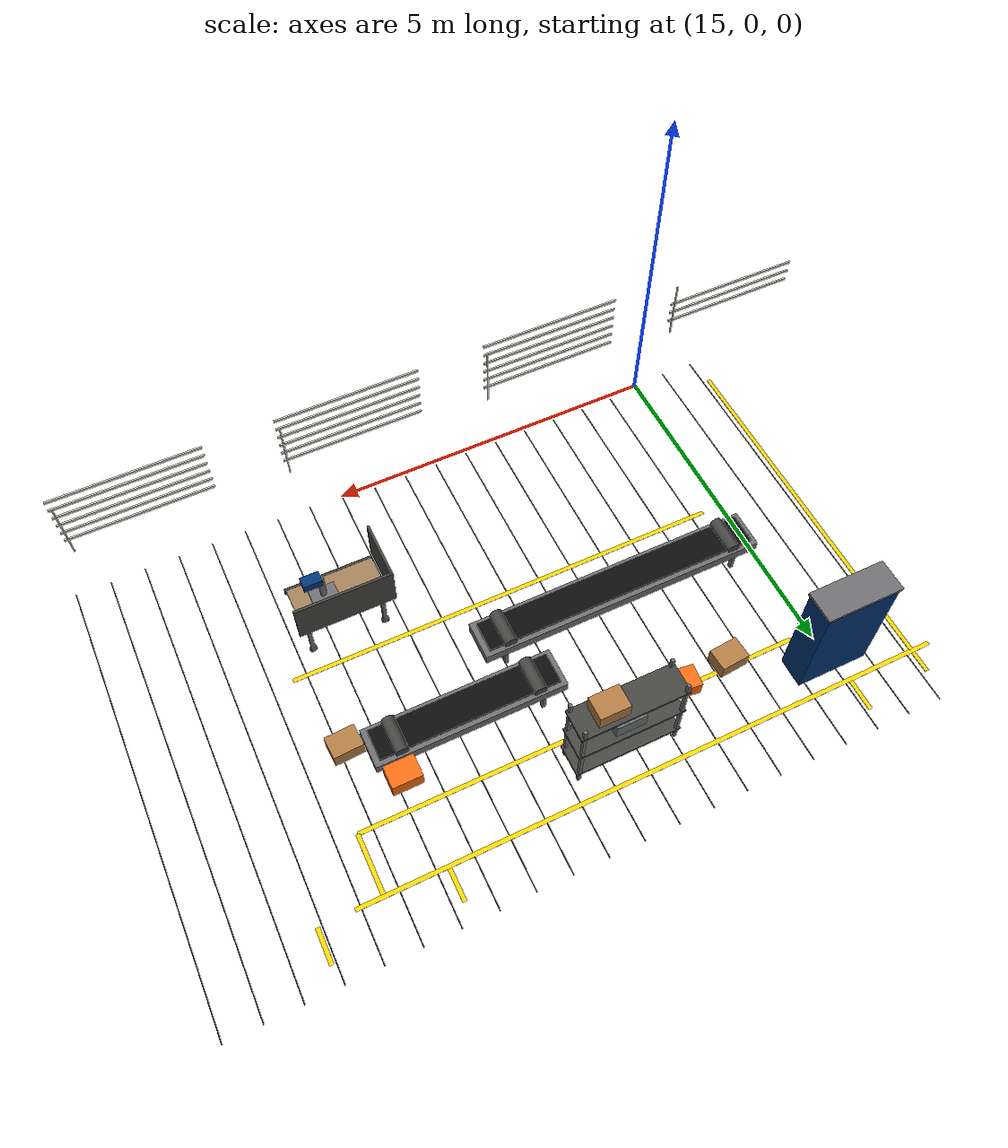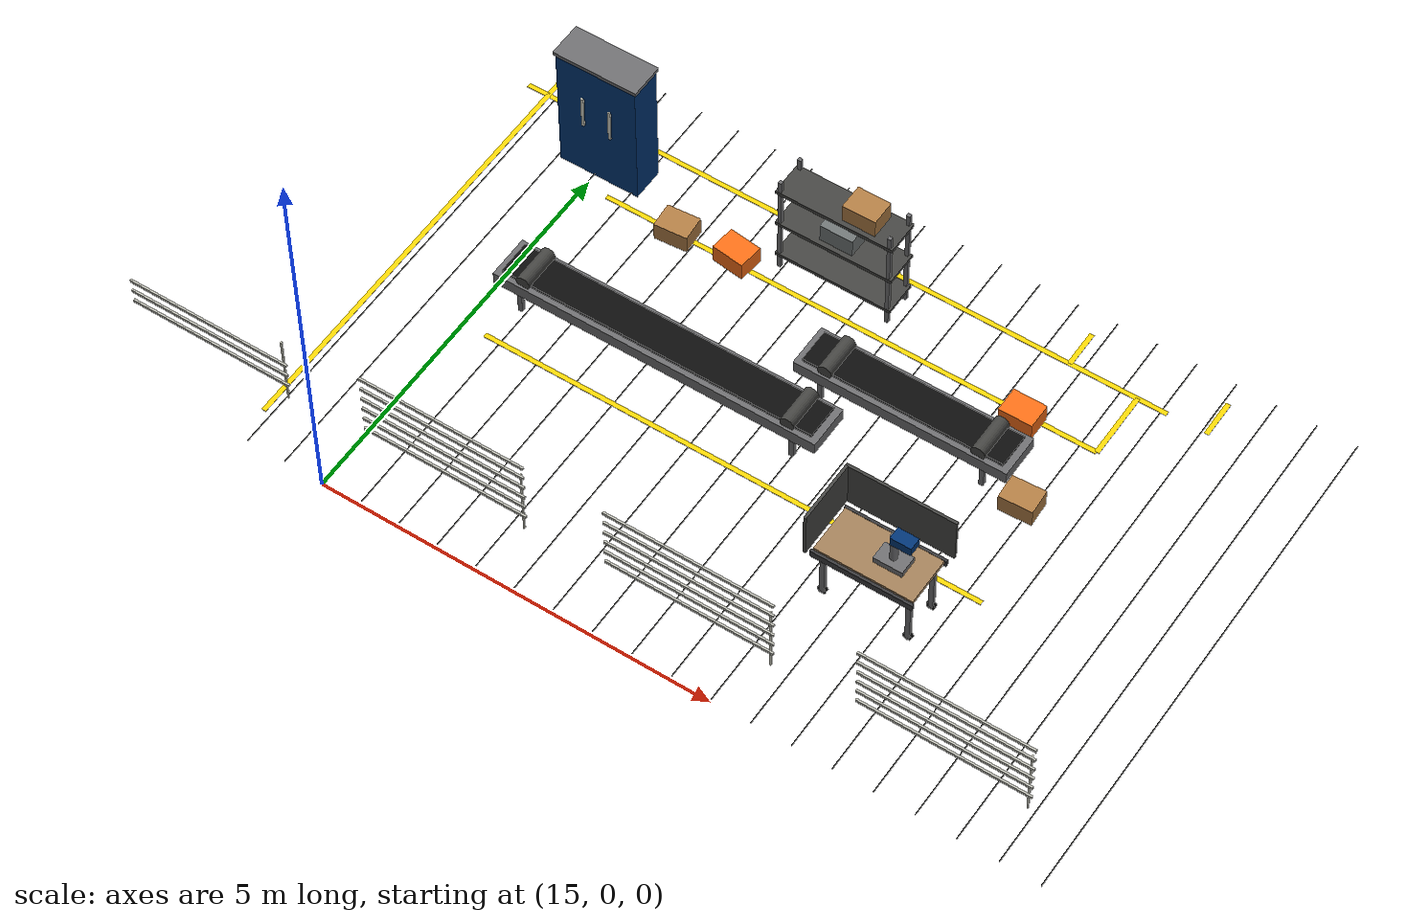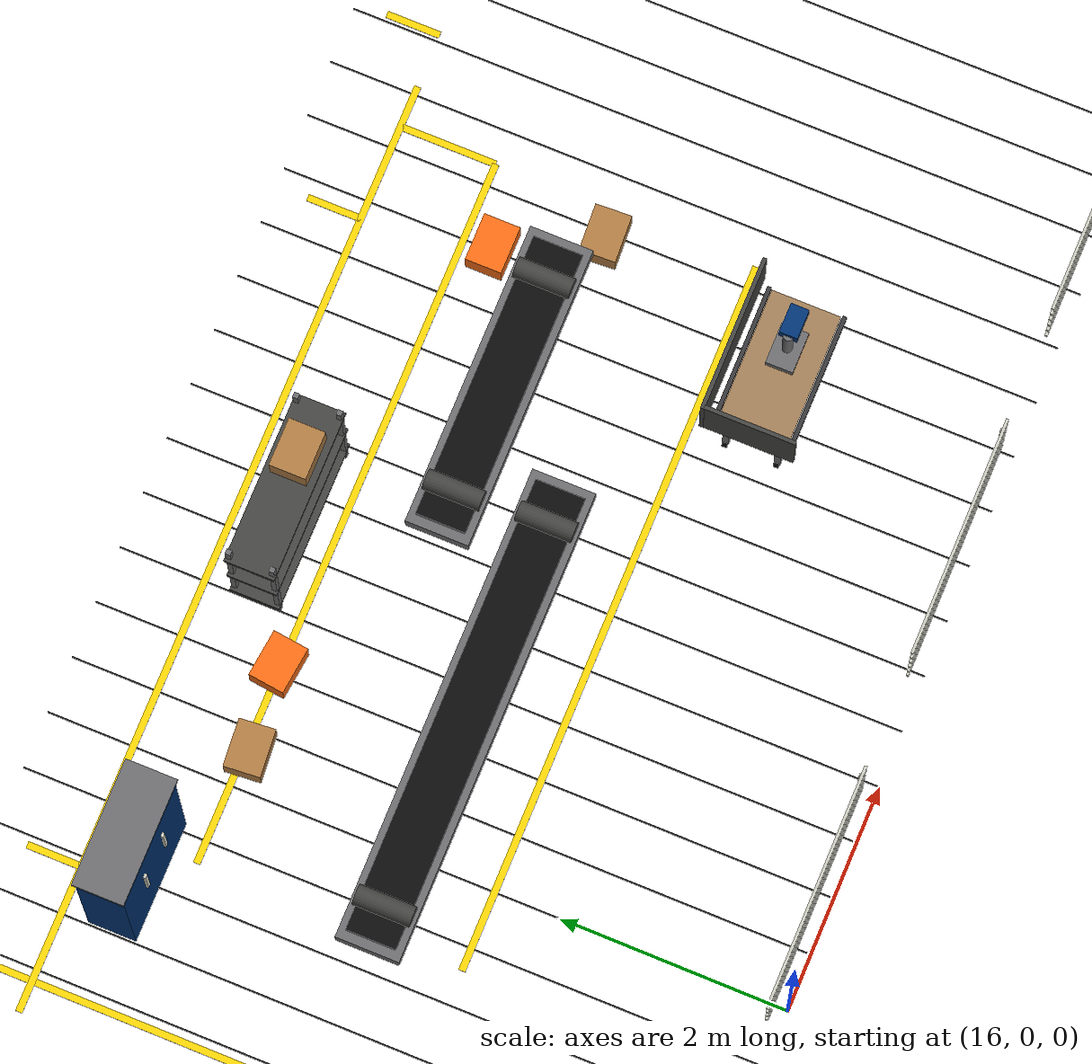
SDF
<sdf version="1.10">
 <model name="room_427_furnishings">
  <static>true</static>
  <link name="tile_seam_x_28">
   <pose>14 3.27 0.032 0 0 0</pose>
   <visual name="visual">
    <geometry><box><size>0.012 6.54 0.004</size></box></geometry>
    <material>
     <ambient>0.13 0.13 0.13 1</ambient>
     <diffuse>0.16 0.16 0.15 1</diffuse>
     <specular>0.04 0.04 0.04 1</specular>
    </material>
   </visual>
  </link>
  <link name="tile_seam_x_29">
   <pose>14.5 3.27 0.032 0 0 0</pose>
   <visual name="visual">
    <geometry><box><size>0.012 6.54 0.004</size></box></geometry>
    <material>
     <ambient>0.13 0.13 0.13 1</ambient>
     <diffuse>0.16 0.16 0.15 1</diffuse>
     <specular>0.04 0.04 0.04 1</specular>
    </material>
   </visual>
  </link>
  <link name="tile_seam_x_30">
   <pose>15 3.27 0.032 0 0 0</pose>
   <visual name="visual">
    <geometry><box><size>0.012 6.54 0.004</size></box></geometry>
    <material>
     <ambient>0.13 0.13 0.13 1</ambient>
     <diffuse>0.16 0.16 0.15 1</diffuse>
     <specular>0.04 0.04 0.04 1</specular>
    </material>
   </visual>
  </link>
  <link name="tile_seam_x_31">
   <pose>15.5 3.27 0.032 0 0 0</pose>
   <visual name="visual">
    <geometry><box><size>0.012 6.54 0.004</size></box></geometry>
    <material>
     <ambient>0.13 0.13 0.13 1</ambient>
     <diffuse>0.16 0.16 0.15 1</diffuse>
     <specular>0.04 0.04 0.04 1</specular>
    </material>
   </visual>
  </link>
  <link name="tile_seam_x_32">
   <pose>16 3.27 0.032 0 0 0</pose>
   <visual name="visual">
    <geometry><box><size>0.012 6.54 0.004</size></box></geometry>
    <material>
     <ambient>0.13 0.13 0.13 1</ambient>
     <diffuse>0.16 0.16 0.15 1</diffuse>
     <specular>0.04 0.04 0.04 1</specular>
    </material>
   </visual>
  </link>
  <link name="tile_seam_x_33">
   <pose>16.5 3.27 0.032 0 0 0</pose>
   <visual name="visual">
    <geometry><box><size>0.012 6.54 0.004</size></box></geometry>
    <material>
     <ambient>0.13 0.13 0.13 1</ambient>
     <diffuse>0.16 0.16 0.15 1</diffuse>
     <specular>0.04 0.04 0.04 1</specular>
    </material>
   </visual>
  </link>
  <link name="tile_seam_x_34">
   <pose>17 3.27 0.032 0 0 0</pose>
   <visual name="visual">
    <geometry><box><size>0.012 6.54 0.004</size></box></geometry>
    <material>
     <ambient>0.13 0.13 0.13 1</ambient>
     <diffuse>0.16 0.16 0.15 1</diffuse>
     <specular>0.04 0.04 0.04 1</specular>
    </material>
   </visual>
  </link>
  <link name="tile_seam_x_35">
   <pose>17.5 3.27 0.032 0 0 0</pose>
   <visual name="visual">
    <geometry><box><size>0.012 6.54 0.004</size></box></geometry>
    <material>
     <ambient>0.13 0.13 0.13 1</ambient>
     <diffuse>0.16 0.16 0.15 1</diffuse>
     <specular>0.04 0.04 0.04 1</specular>
    </material>
   </visual>
  </link>
  <link name="tile_seam_x_36">
   <pose>18 3.27 0.032 0 0 0</pose>
   <visual name="visual">
    <geometry><box><size>0.012 6.54 0.004</size></box></geometry>
    <material>
     <ambient>0.13 0.13 0.13 1</ambient>
     <diffuse>0.16 0.16 0.15 1</diffuse>
     <specular>0.04 0.04 0.04 1</specular>
    </material>
   </visual>
  </link>
  <link name="tile_seam_x_37">
   <pose>18.5 3.27 0.032 0 0 0</pose>
   <visual name="visual">
    <geometry><box><size>0.012 6.54 0.004</size></box></geometry>
    <material>
     <ambient>0.13 0.13 0.13 1</ambient>
     <diffuse>0.16 0.16 0.15 1</diffuse>
     <specular>0.04 0.04 0.04 1</specular>
    </material>
   </visual>
  </link>
  <link name="tile_seam_x_38">
   <pose>19 3.27 0.032 0 0 0</pose>
   <visual name="visual">
    <geometry><box><size>0.012 6.54 0.004</size></box></geometry>
    <material>
     <ambient>0.13 0.13 0.13 1</ambient>
     <diffuse>0.16 0.16 0.15 1</diffuse>
     <specular>0.04 0.04 0.04 1</specular>
    </material>
   </visual>
  </link>
  <link name="tile_seam_x_39">
   <pose>19.5 3.27 0.032 0 0 0</pose>
   <visual name="visual">
    <geometry><box><size>0.012 6.54 0.004</size></box></geometry>
    <material>
     <ambient>0.13 0.13 0.13 1</ambient>
     <diffuse>0.16 0.16 0.15 1</diffuse>
     <specular>0.04 0.04 0.04 1</specular>
    </material>
   </visual>
  </link>
  <link name="tile_seam_x_40">
   <pose>20 3.27 0.032 0 0 0</pose>
   <visual name="visual">
    <geometry><box><size>0.012 6.54 0.004</size></box></geometry>
    <material>
     <ambient>0.13 0.13 0.13 1</ambient>
     <diffuse>0.16 0.16 0.15 1</diffuse>
     <specular>0.04 0.04 0.04 1</specular>
    </material>
   </visual>
  </link>
  <link name="tile_seam_x_41">
   <pose>20.5 3.27 0.032 0 0 0</pose>
   <visual name="visual">
    <geometry><box><size>0.012 6.54 0.004</size></box></geometry>
    <material>
     <ambient>0.13 0.13 0.13 1</ambient>
     <diffuse>0.16 0.16 0.15 1</diffuse>
     <specular>0.04 0.04 0.04 1</specular>
    </material>
   </visual>
  </link>
  <link name="tile_seam_x_42">
   <pose>21 3.27 0.032 0 0 0</pose>
   <visual name="visual">
    <geometry><box><size>0.012 6.54 0.004</size></box></geometry>
    <material>
     <ambient>0.13 0.13 0.13 1</ambient>
     <diffuse>0.16 0.16 0.15 1</diffuse>
     <specular>0.04 0.04 0.04 1</specular>
    </material>
   </visual>
  </link>
  <link name="tile_seam_x_43">
   <pose>21.5 3.27 0.032 0 0 0</pose>
   <visual name="visual">
    <geometry><box><size>0.012 6.54 0.004</size></box></geometry>
    <material>
     <ambient>0.13 0.13 0.13 1</ambient>
     <diffuse>0.16 0.16 0.15 1</diffuse>
     <specular>0.04 0.04 0.04 1</specular>
    </material>
   </visual>
  </link>
  <link name="tile_seam_x_44">
   <pose>22 3.27 0.032 0 0 0</pose>
   <visual name="visual">
    <geometry><box><size>0.012 6.54 0.004</size></box></geometry>
    <material>
     <ambient>0.13 0.13 0.13 1</ambient>
     <diffuse>0.16 0.16 0.15 1</diffuse>
     <specular>0.04 0.04 0.04 1</specular>
    </material>
   </visual>
  </link>
  <link name="tile_seam_x_45">
   <pose>22.5 3.27 0.032 0 0 0</pose>
   <visual name="visual">
    <geometry><box><size>0.012 6.54 0.004</size></box></geometry>
    <material>
     <ambient>0.13 0.13 0.13 1</ambient>
     <diffuse>0.16 0.16 0.15 1</diffuse>
     <specular>0.04 0.04 0.04 1</specular>
    </material>
   </visual>
  </link>
  <link name="tile_seam_x_46">
   <pose>23 3.27 0.032 0 0 0</pose>
   <visual name="visual">
    <geometry><box><size>0.012 6.54 0.004</size></box></geometry>
    <material>
     <ambient>0.13 0.13 0.13 1</ambient>
     <diffuse>0.16 0.16 0.15 1</diffuse>
     <specular>0.04 0.04 0.04 1</specular>
    </material>
   </visual>
  </link>
  <link name="tile_seam_x_47">
   <pose>23.5 3.27 0.032 0 0 0</pose>
   <visual name="visual">
    <geometry><box><size>0.012 6.54 0.004</size></box></geometry>
    <material>
     <ambient>0.13 0.13 0.13 1</ambient>
     <diffuse>0.16 0.16 0.15 1</diffuse>
     <specular>0.04 0.04 0.04 1</specular>
    </material>
   </visual>
  </link>
  <link name="tile_seam_x_48">
   <pose>24 3.27 0.032 0 0 0</pose>
   <visual name="visual">
    <geometry><box><size>0.012 6.54 0.004</size></box></geometry>
    <material>
     <ambient>0.13 0.13 0.13 1</ambient>
     <diffuse>0.16 0.16 0.15 1</diffuse>
     <specular>0.04 0.04 0.04 1</specular>
    </material>
   </visual>
  </link>
  <link name="yellow_tape_class_conveyor_divider">
   <pose>13.9 3.27 0.036 0 0 1.5708</pose>
   <visual name="visual">
    <geometry><box><size>5.7 0.06 0.006</size></box></geometry>
    <material>
     <ambient>1.0 0.82 0.02 1</ambient>
     <diffuse>1.0 0.82 0.02 1</diffuse>
     <specular>0.25 0.22 0.04 1</specular>
    </material>
   </visual>
  </link>
  <link name="yellow_tape_back_door_run">
   <pose>17.85 5.78 0.036 0 0 0</pose>
   <visual name="visual">
    <geometry><box><size>8.45 0.06 0.006</size></box></geometry>
    <material>
     <ambient>1.0 0.82 0.02 1</ambient>
     <diffuse>1.0 0.82 0.02 1</diffuse>
     <specular>0.25 0.22 0.04 1</specular>
    </material>
   </visual>
  </link>
  <link name="yellow_tape_back_door_2_right_side">
   <pose>14.92 6.02 0.036 0 0 1.5708</pose>
   <visual name="visual">
    <geometry><box><size>0.48 0.06 0.006</size></box></geometry>
    <material>
     <ambient>1.0 0.82 0.02 1</ambient>
     <diffuse>1.0 0.82 0.02 1</diffuse>
     <specular>0.25 0.22 0.04 1</specular>
    </material>
   </visual>
  </link>
  <link name="yellow_tape_back_door_1_left_side">
   <pose>20.84 6.02 0.036 0 0 1.5708</pose>
   <visual name="visual">
    <geometry><box><size>0.48 0.06 0.006</size></box></geometry>
    <material>
     <ambient>1.0 0.82 0.02 1</ambient>
     <diffuse>1.0 0.82 0.02 1</diffuse>
     <specular>0.25 0.22 0.04 1</specular>
    </material>
   </visual>
  </link>
  <link name="yellow_tape_back_door_1_right_side">
   <pose>22.56 6.02 0.036 0 0 1.5708</pose>
   <visual name="visual">
    <geometry><box><size>0.48 0.06 0.006</size></box></geometry>
    <material>
     <ambient>1.0 0.82 0.02 1</ambient>
     <diffuse>1.0 0.82 0.02 1</diffuse>
     <specular>0.25 0.22 0.04 1</specular>
    </material>
   </visual>
  </link>
  <link name="yellow_tape_conveyor_front_boundary">
   <pose>18.5 2.58 0.036 0 0 0</pose>
   <visual name="visual">
    <geometry><box><size>6.4 0.06 0.006</size></box></geometry>
    <material>
     <ambient>1.0 0.82 0.02 1</ambient>
     <diffuse>1.0 0.82 0.02 1</diffuse>
     <specular>0.25 0.22 0.04 1</specular>
    </material>
   </visual>
  </link>
  <link name="yellow_tape_conveyor_back_boundary">
   <pose>18.5 4.92 0.036 0 0 0</pose>
   <visual name="visual">
    <geometry><box><size>6.4 0.06 0.006</size></box></geometry>
    <material>
     <ambient>1.0 0.82 0.02 1</ambient>
     <diffuse>1.0 0.82 0.02 1</diffuse>
     <specular>0.25 0.22 0.04 1</specular>
    </material>
   </visual>
  </link>
  <link name="yellow_tape_conveyor_exit_to_back_door">
   <pose>21.7 5.35 0.036 0 0 1.5708</pose>
   <visual name="visual">
    <geometry><box><size>0.86 0.06 0.006</size></box></geometry>
    <material>
     <ambient>1.0 0.82 0.02 1</ambient>
     <diffuse>1.0 0.82 0.02 1</diffuse>
     <specular>0.25 0.22 0.04 1</specular>
    </material>
   </visual>
  </link>
  <link name="blind_5_4">
   <pose>13.61 0.085 1.74 0 0 0</pose>
   <visual name="visual">
    <geometry><box><size>2.06 0.024 0.035</size></box></geometry>
    <material>
     <ambient>0.72 0.72 0.68 1</ambient>
     <diffuse>0.78 0.78 0.74 1</diffuse>
     <specular>0.12 0.12 0.12 1</specular>
    </material>
   </visual>
  </link>
  <link name="blind_5_5">
   <pose>13.61 0.085 1.57 0 0 0</pose>
   <visual name="visual">
    <geometry><box><size>2.06 0.024 0.035</size></box></geometry>
    <material>
     <ambient>0.72 0.72 0.68 1</ambient>
     <diffuse>0.78 0.78 0.74 1</diffuse>
     <specular>0.12 0.12 0.12 1</specular>
    </material>
   </visual>
  </link>
  <link name="blind_5_6">
   <pose>13.61 0.085 1.4 0 0 0</pose>
   <visual name="visual">
    <geometry><box><size>2.06 0.024 0.035</size></box></geometry>
    <material>
     <ambient>0.72 0.72 0.68 1</ambient>
     <diffuse>0.78 0.78 0.74 1</diffuse>
     <specular>0.12 0.12 0.12 1</specular>
    </material>
   </visual>
  </link>
  <link name="blind_5_pull">
   <pose>14.59 0.105 1.62 0 0 0</pose>
   <visual name="visual">
    <geometry><box><size>0.018 0.018 0.96</size></box></geometry>
    <material>
     <ambient>0.78 0.78 0.72 1</ambient>
     <diffuse>0.86 0.86 0.80 1</diffuse>
     <specular>0.45 0.45 0.40 1</specular>
    </material>
   </visual>
  </link>
  <link name="blind_6_1">
   <pose>16.65 0.085 2.25 0 0 0</pose>
   <visual name="visual">
    <geometry><box><size>2.06 0.024 0.035</size></box></geometry>
    <material>
     <ambient>0.72 0.72 0.68 1</ambient>
     <diffuse>0.78 0.78 0.74 1</diffuse>
     <specular>0.12 0.12 0.12 1</specular>
    </material>
   </visual>
  </link>
  <link name="blind_6_2">
   <pose>16.65 0.085 2.08 0 0 0</pose>
   <visual name="visual">
    <geometry><box><size>2.06 0.024 0.035</size></box></geometry>
    <material>
     <ambient>0.72 0.72 0.68 1</ambient>
     <diffuse>0.78 0.78 0.74 1</diffuse>
     <specular>0.12 0.12 0.12 1</specular>
    </material>
   </visual>
  </link>
  <link name="blind_6_3">
   <pose>16.65 0.085 1.91 0 0 0</pose>
   <visual name="visual">
    <geometry><box><size>2.06 0.024 0.035</size></box></geometry>
    <material>
     <ambient>0.72 0.72 0.68 1</ambient>
     <diffuse>0.78 0.78 0.74 1</diffuse>
     <specular>0.12 0.12 0.12 1</specular>
    </material>
   </visual>
  </link>
  <link name="blind_6_4">
   <pose>16.65 0.085 1.74 0 0 0</pose>
   <visual name="visual">
    <geometry><box><size>2.06 0.024 0.035</size></box></geometry>
    <material>
     <ambient>0.72 0.72 0.68 1</ambient>
     <diffuse>0.78 0.78 0.74 1</diffuse>
     <specular>0.12 0.12 0.12 1</specular>
    </material>
   </visual>
  </link>
  <link name="blind_6_5">
   <pose>16.65 0.085 1.57 0 0 0</pose>
   <visual name="visual">
    <geometry><box><size>2.06 0.024 0.035</size></box></geometry>
    <material>
     <ambient>0.72 0.72 0.68 1</ambient>
     <diffuse>0.78 0.78 0.74 1</diffuse>
     <specular>0.12 0.12 0.12 1</specular>
    </material>
   </visual>
  </link>
  <link name="blind_6_6">
   <pose>16.65 0.085 1.4 0 0 0</pose>
   <visual name="visual">
    <geometry><box><size>2.06 0.024 0.035</size></box></geometry>
    <material>
     <ambient>0.72 0.72 0.68 1</ambient>
     <diffuse>0.78 0.78 0.74 1</diffuse>
     <specular>0.12 0.12 0.12 1</specular>
    </material>
   </visual>
  </link>
  <link name="blind_6_pull">
   <pose>17.63 0.105 1.62 0 0 0</pose>
   <visual name="visual">
    <geometry><box><size>0.018 0.018 0.96</size></box></geometry>
    <material>
     <ambient>0.78 0.78 0.72 1</ambient>
     <diffuse>0.86 0.86 0.80 1</diffuse>
     <specular>0.45 0.45 0.40 1</specular>
    </material>
   </visual>
  </link>
  <link name="blind_7_1">
   <pose>19.69 0.085 2.25 0 0 0</pose>
   <visual name="visual">
    <geometry><box><size>2.06 0.024 0.035</size></box></geometry>
    <material>
     <ambient>0.72 0.72 0.68 1</ambient>
     <diffuse>0.78 0.78 0.74 1</diffuse>
     <specular>0.12 0.12 0.12 1</specular>
    </material>
   </visual>
  </link>
  <link name="blind_7_2">
   <pose>19.69 0.085 2.08 0 0 0</pose>
   <visual name="visual">
    <geometry><box><size>2.06 0.024 0.035</size></box></geometry>
    <material>
     <ambient>0.72 0.72 0.68 1</ambient>
     <diffuse>0.78 0.78 0.74 1</diffuse>
     <specular>0.12 0.12 0.12 1</specular>
    </material>
   </visual>
  </link>
  <link name="blind_7_3">
   <pose>19.69 0.085 1.91 0 0 0</pose>
   <visual name="visual">
    <geometry><box><size>2.06 0.024 0.035</size></box></geometry>
    <material>
     <ambient>0.72 0.72 0.68 1</ambient>
     <diffuse>0.78 0.78 0.74 1</diffuse>
     <specular>0.12 0.12 0.12 1</specular>
    </material>
   </visual>
  </link>
  <link name="blind_7_4">
   <pose>19.69 0.085 1.74 0 0 0</pose>
   <visual name="visual">
    <geometry><box><size>2.06 0.024 0.035</size></box></geometry>
    <material>
     <ambient>0.72 0.72 0.68 1</ambient>
     <diffuse>0.78 0.78 0.74 1</diffuse>
     <specular>0.12 0.12 0.12 1</specular>
    </material>
   </visual>
  </link>
  <link name="blind_7_5">
   <pose>19.69 0.085 1.57 0 0 0</pose>
   <visual name="visual">
    <geometry><box><size>2.06 0.024 0.035</size></box></geometry>
    <material>
     <ambient>0.72 0.72 0.68 1</ambient>
     <diffuse>0.78 0.78 0.74 1</diffuse>
     <specular>0.12 0.12 0.12 1</specular>
    </material>
   </visual>
  </link>
  <link name="blind_7_6">
   <pose>19.69 0.085 1.4 0 0 0</pose>
   <visual name="visual">
    <geometry><box><size>2.06 0.024 0.035</size></box></geometry>
    <material>
     <ambient>0.72 0.72 0.68 1</ambient>
     <diffuse>0.78 0.78 0.74 1</diffuse>
     <specular>0.12 0.12 0.12 1</specular>
    </material>
   </visual>
  </link>
  <link name="blind_7_pull">
   <pose>20.67 0.105 1.62 0 0 0</pose>
   <visual name="visual">
    <geometry><box><size>0.018 0.018 0.96</size></box></geometry>
    <material>
     <ambient>0.78 0.78 0.72 1</ambient>
     <diffuse>0.86 0.86 0.80 1</diffuse>
     <specular>0.45 0.45 0.40 1</specular>
    </material>
   </visual>
  </link>
  <link name="blind_8_1">
   <pose>22.73 0.085 2.25 0 0 0</pose>
   <visual name="visual">
    <geometry><box><size>2.06 0.024 0.035</size></box></geometry>
    <material>
     <ambient>0.72 0.72 0.68 1</ambient>
     <diffuse>0.78 0.78 0.74 1</diffuse>
     <specular>0.12 0.12 0.12 1</specular>
    </material>
   </visual>
  </link>
  <link name="blind_8_2">
   <pose>22.73 0.085 2.08 0 0 0</pose>
   <visual name="visual">
    <geometry><box><size>2.06 0.024 0.035</size></box></geometry>
    <material>
     <ambient>0.72 0.72 0.68 1</ambient>
     <diffuse>0.78 0.78 0.74 1</diffuse>
     <specular>0.12 0.12 0.12 1</specular>
    </material>
   </visual>
  </link>
  <link name="blind_8_3">
   <pose>22.73 0.085 1.91 0 0 0</pose>
   <visual name="visual">
    <geometry><box><size>2.06 0.024 0.035</size></box></geometry>
    <material>
     <ambient>0.72 0.72 0.68 1</ambient>
     <diffuse>0.78 0.78 0.74 1</diffuse>
     <specular>0.12 0.12 0.12 1</specular>
    </material>
   </visual>
  </link>
  <link name="blind_8_4">
   <pose>22.73 0.085 1.74 0 0 0</pose>
   <visual name="visual">
    <geometry><box><size>2.06 0.024 0.035</size></box></geometry>
    <material>
     <ambient>0.72 0.72 0.68 1</ambient>
     <diffuse>0.78 0.78 0.74 1</diffuse>
     <specular>0.12 0.12 0.12 1</specular>
    </material>
   </visual>
  </link>
  <link name="blind_8_5">
   <pose>22.73 0.085 1.57 0 0 0</pose>
   <visual name="visual">
    <geometry><box><size>2.06 0.024 0.035</size></box></geometry>
    <material>
     <ambient>0.72 0.72 0.68 1</ambient>
     <diffuse>0.78 0.78 0.74 1</diffuse>
     <specular>0.12 0.12 0.12 1</specular>
    </material>
   </visual>
  </link>
  <link name="blind_8_6">
   <pose>22.73 0.085 1.4 0 0 0</pose>
   <visual name="visual">
    <geometry><box><size>2.06 0.024 0.035</size></box></geometry>
    <material>
     <ambient>0.72 0.72 0.68 1</ambient>
     <diffuse>0.78 0.78 0.74 1</diffuse>
     <specular>0.12 0.12 0.12 1</specular>
    </material>
   </visual>
  </link>
  <link name="blind_8_pull">
   <pose>23.71 0.105 1.62 0 0 0</pose>
   <visual name="visual">
    <geometry><box><size>0.018 0.018 0.96</size></box></geometry>
    <material>
     <ambient>0.78 0.78 0.72 1</ambient>
     <diffuse>0.86 0.86 0.80 1</diffuse>
     <specular>0.45 0.45 0.40 1</specular>
    </material>
   </visual>
  </link>
  <link name="conveyor_main_frame">
   <pose>17.2 3.32 0.42 0 0 0</pose>
   <collision name="collision"><geometry><box><size>4.2 0.56 0.16</size></box></geometry></collision>
   <visual name="visual">
    <geometry><box><size>4.2 0.56 0.16</size></box></geometry>
    <material>
     <ambient>0.36 0.36 0.37 1</ambient>
     <diffuse>0.42 0.42 0.43 1</diffuse>
     <specular>0.45 0.45 0.45 1</specular>
    </material>
   </visual>
  </link>
  <link name="conveyor_main_belt">
   <pose>17.2 3.32 0.53 0 0 0</pose>
   <collision name="collision"><geometry><box><size>4.04 0.44 0.035</size></box></geometry></collision>
   <visual name="visual">
    <geometry><box><size>4.04 0.44 0.035</size></box></geometry>
    <material>
     <ambient>0.035 0.035 0.035 1</ambient>
     <diffuse>0.045 0.045 0.045 1</diffuse>
     <specular>0.08 0.08 0.08 1</specular>
    </material>
   </visual>
  </link>
  <link name="conveyor_main_roller_1">
   <pose>15.48 3.32 0.55 1.5708 0 0</pose>
   <collision name="collision">
    <geometry><cylinder><radius>0.09</radius><length>0.5</length></cylinder></geometry>
   </collision>
   <visual name="visual">
    <geometry><cylinder><radius>0.09</radius><length>0.5</length></cylinder></geometry>
    <material>
     <ambient>0.18 0.18 0.18 1</ambient>
     <diffuse>0.26 0.26 0.25 1</diffuse>
     <specular>0.25 0.25 0.25 1</specular>
    </material>
   </visual>
  </link>
  <link name="conveyor_main_roller_2">
   <pose>18.92 3.32 0.55 1.5708 0 0</pose>
   <collision name="collision">
    <geometry><cylinder><radius>0.09</radius><length>0.5</length></cylinder></geometry>
   </collision>
   <visual name="visual">
    <geometry><cylinder><radius>0.09</radius><length>0.5</length></cylinder></geometry>
    <material>
     <ambient>0.18 0.18 0.18 1</ambient>
     <diffuse>0.26 0.26 0.25 1</diffuse>
     <specular>0.25 0.25 0.25 1</specular>
    </material>
   </visual>
  </link>
  <link name="conveyor_main_leg_1">
   <pose>18.98 3.54 0.24 0 0 0</pose>
   <collision name="collision"><geometry><box><size>0.055 0.055 0.44</size></box></geometry></collision>
   <visual name="visual">
    <geometry><box><size>0.055 0.055 0.44</size></box></geometry>
    <material>
     <ambient>0.36 0.36 0.37 1</ambient>
     <diffuse>0.42 0.42 0.43 1</diffuse>
     <specular>0.45 0.45 0.45 1</specular>
    </material>
   </visual>
  </link>
  <link name="conveyor_main_leg_2">
   <pose>18.98 3.1 0.24 0 0 0</pose>
   <collision name="collision"><geometry><box><size>0.055 0.055 0.44</size></box></geometry></collision>
   <visual name="visual">
    <geometry><box><size>0.055 0.055 0.44</size></box></geometry>
    <material>
     <ambient>0.36 0.36 0.37 1</ambient>
     <diffuse>0.42 0.42 0.43 1</diffuse>
     <specular>0.45 0.45 0.45 1</specular>
    </material>
   </visual>
  </link>
  <link name="conveyor_main_leg_3">
   <pose>15.42 3.54 0.24 0 0 0</pose>
   <collision name="collision"><geometry><box><size>0.055 0.055 0.44</size></box></geometry></collision>
   <visual name="visual">
    <geometry><box><size>0.055 0.055 0.44</size></box></geometry>
    <material>
     <ambient>0.36 0.36 0.37 1</ambient>
     <diffuse>0.42 0.42 0.43 1</diffuse>
     <specular>0.45 0.45 0.45 1</specular>
    </material>
   </visual>
  </link>
  <link name="conveyor_main_leg_4">
   <pose>15.42 3.1 0.24 0 0 0</pose>
   <collision name="collision"><geometry><box><size>0.055 0.055 0.44</size></box></geometry></collision>
   <visual name="visual">
    <geometry><box><size>0.055 0.055 0.44</size></box></geometry>
    <material>
     <ambient>0.36 0.36 0.37 1</ambient>
     <diffuse>0.42 0.42 0.43 1</diffuse>
     <specular>0.45 0.45 0.45 1</specular>
    </material>
   </visual>
  </link>
  <link name="conveyor_return_frame">
   <pose>19.85 4.12 0.42 0 0 0</pose>
   <collision name="collision"><geometry><box><size>2.7 0.56 0.16</size></box></geometry></collision>
   <visual name="visual">
    <geometry><box><size>2.7 0.56 0.16</size></box></geometry>
    <material>
     <ambient>0.36 0.36 0.37 1</ambient>
     <diffuse>0.42 0.42 0.43 1</diffuse>
     <specular>0.45 0.45 0.45 1</specular>
    </material>
   </visual>
  </link>
  <link name="conveyor_return_belt">
   <pose>19.85 4.12 0.53 0 0 0</pose>
   <collision name="collision"><geometry><box><size>2.54 0.44 0.035</size></box></geometry></collision>
   <visual name="visual">
    <geometry><box><size>2.54 0.44 0.035</size></box></geometry>
    <material>
     <ambient>0.035 0.035 0.035 1</ambient>
     <diffuse>0.045 0.045 0.045 1</diffuse>
     <specular>0.08 0.08 0.08 1</specular>
    </material>
   </visual>
  </link>
  <link name="conveyor_return_roller_1">
   <pose>18.88 4.12 0.55 1.5708 0 0</pose>
   <collision name="collision">
    <geometry><cylinder><radius>0.09</radius><length>0.5</length></cylinder></geometry>
   </collision>
   <visual name="visual">
    <geometry><cylinder><radius>0.09</radius><length>0.5</length></cylinder></geometry>
    <material>
     <ambient>0.18 0.18 0.18 1</ambient>
     <diffuse>0.26 0.26 0.25 1</diffuse>
     <specular>0.25 0.25 0.25 1</specular>
    </material>
   </visual>
  </link>
  <link name="conveyor_return_roller_2">
   <pose>20.82 4.12 0.55 1.5708 0 0</pose>
   <collision name="collision">
    <geometry><cylinder><radius>0.09</radius><length>0.5</length></cylinder></geometry>
   </collision>
   <visual name="visual">
    <geometry><cylinder><radius>0.09</radius><length>0.5</length></cylinder></geometry>
    <material>
     <ambient>0.18 0.18 0.18 1</ambient>
     <diffuse>0.26 0.26 0.25 1</diffuse>
     <specular>0.25 0.25 0.25 1</specular>
    </material>
   </visual>
  </link>
  <link name="conveyor_return_leg_1">
   <pose>20.88 4.34 0.24 0 0 0</pose>
   <collision name="collision"><geometry><box><size>0.055 0.055 0.44</size></box></geometry></collision>
   <visual name="visual">
    <geometry><box><size>0.055 0.055 0.44</size></box></geometry>
    <material>
     <ambient>0.36 0.36 0.37 1</ambient>
     <diffuse>0.42 0.42 0.43 1</diffuse>
     <specular>0.45 0.45 0.45 1</specular>
    </material>
   </visual>
  </link>
  <link name="conveyor_return_leg_2">
   <pose>20.88 3.9 0.24 0 0 0</pose>
   <collision name="collision"><geometry><box><size>0.055 0.055 0.44</size></box></geometry></collision>
   <visual name="visual">
    <geometry><box><size>0.055 0.055 0.44</size></box></geometry>
    <material>
     <ambient>0.36 0.36 0.37 1</ambient>
     <diffuse>0.42 0.42 0.43 1</diffuse>
     <specular>0.45 0.45 0.45 1</specular>
    </material>
   </visual>
  </link>
  <link name="conveyor_return_leg_3">
   <pose>18.82 4.34 0.24 0 0 0</pose>
   <collision name="collision"><geometry><box><size>0.055 0.055 0.44</size></box></geometry></collision>
   <visual name="visual">
    <geometry><box><size>0.055 0.055 0.44</size></box></geometry>
    <material>
     <ambient>0.36 0.36 0.37 1</ambient>
     <diffuse>0.42 0.42 0.43 1</diffuse>
     <specular>0.45 0.45 0.45 1</specular>
    </material>
   </visual>
  </link>
  <link name="conveyor_return_leg_4">
   <pose>18.82 3.9 0.24 0 0 0</pose>
   <collision name="collision"><geometry><box><size>0.055 0.055 0.44</size></box></geometry></collision>
   <visual name="visual">
    <geometry><box><size>0.055 0.055 0.44</size></box></geometry>
    <material>
     <ambient>0.36 0.36 0.37 1</ambient>
     <diffuse>0.42 0.42 0.43 1</diffuse>
     <specular>0.45 0.45 0.45 1</specular>
    </material>
   </visual>
  </link>
  <link name="robot_workcell_bench_top">
   <pose>20.75 2.02 0.82 0 0 0</pose>
   <collision name="collision"><geometry><box><size>1.22 0.61 0.055</size></box></geometry></collision>
   <visual name="visual">
    <geometry><box><size>1.22 0.61 0.055</size></box></geometry>
    <material>
     <ambient>0.58 0.46 0.32 1</ambient>
     <diffuse>0.62 0.49 0.34 1</diffuse>
     <specular>0.22 0.18 0.12 1</specular>
    </material>
   </visual>
  </link>
  <link name="robot_workcell_bench_front_edge">
   <pose>20.75 2.352 0.79 0 0 0</pose>
   <collision name="collision"><geometry><box><size>1.26 0.035 0.09</size></box></geometry></collision>
   <visual name="visual">
    <geometry><box><size>1.26 0.035 0.09</size></box></geometry>
    <material>
     <ambient>0.18 0.18 0.19 1</ambient>
     <diffuse>0.22 0.22 0.23 1</diffuse>
     <specular>0.35 0.35 0.35 1</specular>
    </material>
   </visual>
  </link>
  <link name="robot_workcell_bench_back_edge">
   <pose>20.75 1.688 0.79 0 0 0</pose>
   <collision name="collision"><geometry><box><size>1.26 0.035 0.09</size></box></geometry></collision>
   <visual name="visual">
    <geometry><box><size>1.26 0.035 0.09</size></box></geometry>
    <material>
     <ambient>0.18 0.18 0.19 1</ambient>
     <diffuse>0.22 0.22 0.23 1</diffuse>
     <specular>0.35 0.35 0.35 1</specular>
    </material>
   </visual>
  </link>
  <link name="robot_workcell_bench_leg_1">
   <pose>21.28 2.25 0.42 0 0 0</pose>
   <collision name="collision"><geometry><box><size>0.055 0.055 0.74</size></box></geometry></collision>
   <visual name="visual">
    <geometry><box><size>0.055 0.055 0.74</size></box></geometry>
    <material>
     <ambient>0.36 0.36 0.37 1</ambient>
     <diffuse>0.42 0.42 0.43 1</diffuse>
     <specular>0.45 0.45 0.45 1</specular>
    </material>
   </visual>
  </link>
  <link name="robot_workcell_bench_caster_1">
   <pose>21.28 2.25 0.07 1.5708 0 0</pose>
   <collision name="collision">
    <geometry><cylinder><radius>0.055</radius><length>0.045</length></cylinder></geometry>
   </collision>
   <visual name="visual">
    <geometry><cylinder><radius>0.055</radius><length>0.045</length></cylinder></geometry>
    <material>
     <ambient>0.035 0.035 0.035 1</ambient>
     <diffuse>0.045 0.045 0.045 1</diffuse>
     <specular>0.08 0.08 0.08 1</specular>
    </material>
   </visual>
  </link>
  <link name="robot_workcell_bench_leg_2">
   <pose>21.28 1.79 0.42 0 0 0</pose>
   <collision name="collision"><geometry><box><size>0.055 0.055 0.74</size></box></geometry></collision>
   <visual name="visual">
    <geometry><box><size>0.055 0.055 0.74</size></box></geometry>
    <material>
     <ambient>0.36 0.36 0.37 1</ambient>
     <diffuse>0.42 0.42 0.43 1</diffuse>
     <specular>0.45 0.45 0.45 1</specular>
    </material>
   </visual>
  </link>
  <link name="robot_workcell_bench_caster_2">
   <pose>21.28 1.79 0.07 1.5708 0 0</pose>
   <collision name="collision">
    <geometry><cylinder><radius>0.055</radius><length>0.045</length></cylinder></geometry>
   </collision>
   <visual name="visual">
    <geometry><cylinder><radius>0.055</radius><length>0.045</length></cylinder></geometry>
    <material>
     <ambient>0.035 0.035 0.035 1</ambient>
     <diffuse>0.045 0.045 0.045 1</diffuse>
     <specular>0.08 0.08 0.08 1</specular>
    </material>
   </visual>
  </link>
  <link name="robot_workcell_bench_leg_3">
   <pose>20.22 2.25 0.42 0 0 0</pose>
   <collision name="collision"><geometry><box><size>0.055 0.055 0.74</size></box></geometry></collision>
   <visual name="visual">
    <geometry><box><size>0.055 0.055 0.74</size></box></geometry>
    <material>
     <ambient>0.36 0.36 0.37 1</ambient>
     <diffuse>0.42 0.42 0.43 1</diffuse>
     <specular>0.45 0.45 0.45 1</specular>
    </material>
   </visual>
  </link>
  <link name="robot_workcell_bench_caster_3">
   <pose>20.22 2.25 0.07 1.5708 0 0</pose>
   <collision name="collision">
    <geometry><cylinder><radius>0.055</radius><length>0.045</length></cylinder></geometry>
   </collision>
   <visual name="visual">
    <geometry><cylinder><radius>0.055</radius><length>0.045</length></cylinder></geometry>
    <material>
     <ambient>0.035 0.035 0.035 1</ambient>
     <diffuse>0.045 0.045 0.045 1</diffuse>
     <specular>0.08 0.08 0.08 1</specular>
    </material>
   </visual>
  </link>
  <link name="robot_workcell_bench_leg_4">
   <pose>20.22 1.79 0.42 0 0 0</pose>
   <collision name="collision"><geometry><box><size>0.055 0.055 0.74</size></box></geometry></collision>
   <visual name="visual">
    <geometry><box><size>0.055 0.055 0.74</size></box></geometry>
    <material>
     <ambient>0.36 0.36 0.37 1</ambient>
     <diffuse>0.42 0.42 0.43 1</diffuse>
     <specular>0.45 0.45 0.45 1</specular>
    </material>
   </visual>
  </link>
  <link name="robot_workcell_bench_caster_4">
   <pose>20.22 1.79 0.07 1.5708 0 0</pose>
   <collision name="collision">
    <geometry><cylinder><radius>0.055</radius><length>0.045</length></cylinder></geometry>
   </collision>
   <visual name="visual">
    <geometry><cylinder><radius>0.055</radius><length>0.045</length></cylinder></geometry>
    <material>
     <ambient>0.035 0.035 0.035 1</ambient>
     <diffuse>0.045 0.045 0.045 1</diffuse>
     <specular>0.08 0.08 0.08 1</specular>
    </material>
   </visual>
  </link>
  <link name="robot_workcell_guard_left">
   <pose>20.09 2.02 1.15 0 0 0</pose>
   <visual name="visual">
    <geometry><box><size>0.035 0.8 0.62</size></box></geometry>
    <material>
     <ambient>0.18 0.18 0.18 1</ambient>
     <diffuse>0.26 0.26 0.25 1</diffuse>
     <specular>0.25 0.25 0.25 1</specular>
    </material>
   </visual>
  </link>
  <link name="robot_workcell_guard_back">
   <pose>20.75 2.43 1.15 0 0 0</pose>
   <visual name="visual">
    <geometry><box><size>1.36 0.035 0.62</size></box></geometry>
    <material>
     <ambient>0.18 0.18 0.18 1</ambient>
     <diffuse>0.26 0.26 0.25 1</diffuse>
     <specular>0.25 0.25 0.25 1</specular>
    </material>
   </visual>
  </link>
  <link name="robot_workcell_fixture_base">
   <pose>20.93 2.02 0.9 0 0 0</pose>
   <collision name="collision"><geometry><box><size>0.36 0.24 0.08</size></box></geometry></collision>
   <visual name="visual">
    <geometry><box><size>0.36 0.24 0.08</size></box></geometry>
    <material>
     <ambient>0.36 0.36 0.37 1</ambient>
     <diffuse>0.42 0.42 0.43 1</diffuse>
     <specular>0.45 0.45 0.45 1</specular>
    </material>
   </visual>
  </link>
  <link name="robot_workcell_tool_column">
   <pose>20.93 2.02 1.12 0 0 0</pose>
   <collision name="collision">
    <geometry><cylinder><radius>0.045</radius><length>0.42</length></cylinder></geometry>
   </collision>
   <visual name="visual">
    <geometry><cylinder><radius>0.045</radius><length>0.42</length></cylinder></geometry>
    <material>
     <ambient>0.36 0.36 0.37 1</ambient>
     <diffuse>0.42 0.42 0.43 1</diffuse>
     <specular>0.45 0.45 0.45 1</specular>
    </material>
   </visual>
  </link>
  <link name="robot_workcell_tool_head">
   <pose>21.05 2.02 1.32 0 0 0</pose>
   <collision name="collision"><geometry><box><size>0.26 0.16 0.12</size></box></geometry></collision>
   <visual name="visual">
    <geometry><box><size>0.26 0.16 0.12</size></box></geometry>
    <material>
     <ambient>0.00 0.16 0.35 1</ambient>
     <diffuse>0.00 0.20 0.45 1</diffuse>
     <specular>0.28 0.32 0.38 1</specular>
    </material>
   </visual>
  </link>
  <link name="mini_factory_rack_shelf_1">
   <pose>18.2 5.3 0.35 0 0 0</pose>
   <collision name="collision"><geometry><box><size>1.5 0.44 0.045</size></box></geometry></collision>
   <visual name="visual">
    <geometry><box><size>1.5 0.44 0.045</size></box></geometry>
    <material>
     <ambient>0.18 0.18 0.18 1</ambient>
     <diffuse>0.26 0.26 0.25 1</diffuse>
     <specular>0.25 0.25 0.25 1</specular>
    </material>
   </visual>
  </link>
  <link name="mini_factory_rack_shelf_2">
   <pose>18.2 5.3 0.88 0 0 0</pose>
   <collision name="collision"><geometry><box><size>1.5 0.44 0.045</size></box></geometry></collision>
   <visual name="visual">
    <geometry><box><size>1.5 0.44 0.045</size></box></geometry>
    <material>
     <ambient>0.18 0.18 0.18 1</ambient>
     <diffuse>0.26 0.26 0.25 1</diffuse>
     <specular>0.25 0.25 0.25 1</specular>
    </material>
   </visual>
  </link>
  <link name="mini_factory_rack_shelf_3">
   <pose>18.2 5.3 1.41 0 0 0</pose>
   <collision name="collision"><geometry><box><size>1.5 0.44 0.045</size></box></geometry></collision>
   <visual name="visual">
    <geometry><box><size>1.5 0.44 0.045</size></box></geometry>
    <material>
     <ambient>0.18 0.18 0.18 1</ambient>
     <diffuse>0.26 0.26 0.25 1</diffuse>
     <specular>0.25 0.25 0.25 1</specular>
    </material>
   </visual>
  </link>
  <link name="mini_factory_rack_post_1">
   <pose>18.9 5.49 0.86 0 0 0</pose>
   <collision name="collision"><geometry><box><size>0.045 0.045 1.45</size></box></geometry></collision>
   <visual name="visual">
    <geometry><box><size>0.045 0.045 1.45</size></box></geometry>
    <material>
     <ambient>0.36 0.36 0.37 1</ambient>
     <diffuse>0.42 0.42 0.43 1</diffuse>
     <specular>0.45 0.45 0.45 1</specular>
    </material>
   </visual>
  </link>
  <link name="mini_factory_rack_post_2">
   <pose>18.9 5.11 0.86 0 0 0</pose>
   <collision name="collision"><geometry><box><size>0.045 0.045 1.45</size></box></geometry></collision>
   <visual name="visual">
    <geometry><box><size>0.045 0.045 1.45</size></box></geometry>
    <material>
     <ambient>0.36 0.36 0.37 1</ambient>
     <diffuse>0.42 0.42 0.43 1</diffuse>
     <specular>0.45 0.45 0.45 1</specular>
    </material>
   </visual>
  </link>
  <link name="mini_factory_rack_post_3">
   <pose>17.5 5.49 0.86 0 0 0</pose>
   <collision name="collision"><geometry><box><size>0.045 0.045 1.45</size></box></geometry></collision>
   <visual name="visual">
    <geometry><box><size>0.045 0.045 1.45</size></box></geometry>
    <material>
     <ambient>0.36 0.36 0.37 1</ambient>
     <diffuse>0.42 0.42 0.43 1</diffuse>
     <specular>0.45 0.45 0.45 1</specular>
    </material>
   </visual>
  </link>
  <link name="mini_factory_rack_post_4">
   <pose>17.5 5.11 0.86 0 0 0</pose>
   <collision name="collision"><geometry><box><size>0.045 0.045 1.45</size></box></geometry></collision>
   <visual name="visual">
    <geometry><box><size>0.045 0.045 1.45</size></box></geometry>
    <material>
     <ambient>0.36 0.36 0.37 1</ambient>
     <diffuse>0.42 0.42 0.43 1</diffuse>
     <specular>0.45 0.45 0.45 1</specular>
    </material>
   </visual>
  </link>
  <link name="tool_cabinet_conveyor_body">
   <pose>15.05 5.34 0.88 0 0 0</pose>
   <collision name="collision"><geometry><box><size>1.05 0.42 1.76</size></box></geometry></collision>
   <visual name="visual">
    <geometry><box><size>1.05 0.42 1.76</size></box></geometry>
    <material>
     <ambient>0.00 0.16 0.35 1</ambient>
     <diffuse>0.00 0.20 0.45 1</diffuse>
     <specular>0.28 0.32 0.38 1</specular>
    </material>
   </visual>
  </link>
  <link name="tool_cabinet_conveyor_top_trim">
   <pose>15.05 5.34 1.78 0 0 0</pose>
   <collision name="collision"><geometry><box><size>1.1 0.45 0.05</size></box></geometry></collision>
   <visual name="visual">
    <geometry><box><size>1.1 0.45 0.05</size></box></geometry>
    <material>
     <ambient>0.36 0.36 0.37 1</ambient>
     <diffuse>0.42 0.42 0.43 1</diffuse>
     <specular>0.45 0.45 0.45 1</specular>
    </material>
   </visual>
  </link>
  <link name="tool_cabinet_conveyor_left_handle">
   <pose>14.87 5.125 1.02 0 0 0</pose>
   <visual name="visual">
    <geometry><box><size>0.035 0.03 0.45</size></box></geometry>
    <material>
     <ambient>0.78 0.78 0.72 1</ambient>
     <diffuse>0.86 0.86 0.80 1</diffuse>
     <specular>0.45 0.45 0.40 1</specular>
    </material>
   </visual>
  </link>
  <link name="tool_cabinet_conveyor_right_handle">
   <pose>15.23 5.125 1.02 0 0 0</pose>
   <visual name="visual">
    <geometry><box><size>0.035 0.03 0.45</size></box></geometry>
    <material>
     <ambient>0.78 0.78 0.72 1</ambient>
     <diffuse>0.86 0.86 0.80 1</diffuse>
     <specular>0.45 0.45 0.40 1</specular>
    </material>
   </visual>
  </link>
  <link name="loose_box_1">
   <pose>16.3 4.86 0.22 0 0 0.08</pose>
   <collision name="collision"><geometry><box><size>0.42 0.32 0.24</size></box></geometry></collision>
   <visual name="visual">
    <geometry><box><size>0.42 0.32 0.24</size></box></geometry>
    <material>
     <ambient>0.55 0.38 0.20 1</ambient>
     <diffuse>0.68 0.48 0.26 1</diffuse>
     <specular>0.08 0.06 0.04 1</specular>
    </material>
   </visual>
  </link>
  <link name="loose_box_2">
   <pose>17.05 4.92 0.22 0 0 -0.12</pose>
   <collision name="collision"><geometry><box><size>0.42 0.32 0.24</size></box></geometry></collision>
   <visual name="visual">
    <geometry><box><size>0.42 0.32 0.24</size></box></geometry>
    <material>
     <ambient>0.88 0.34 0.05 1</ambient>
     <diffuse>0.96 0.42 0.08 1</diffuse>
     <specular>0.20 0.14 0.06 1</specular>
    </material>
   </visual>
  </link>
  <link name="loose_box_3">
   <pose>18.2 5.3 1.02 0 0 0</pose>
   <collision name="collision"><geometry><box><size>0.42 0.32 0.24</size></box></geometry></collision>
   <visual name="visual">
    <geometry><box><size>0.42 0.32 0.24</size></box></geometry>
    <material>
     <ambient>0.32 0.34 0.34 1</ambient>
     <diffuse>0.43 0.45 0.45 1</diffuse>
     <specular>0.16 0.16 0.16 1</specular>
    </material>
   </visual>
  </link>
  <link name="loose_box_4">
   <pose>18.48 5.3 1.55 0 0 0</pose>
   <collision name="collision"><geometry><box><size>0.42 0.32 0.24</size></box></geometry></collision>
   <visual name="visual">
    <geometry><box><size>0.42 0.32 0.24</size></box></geometry>
    <material>
     <ambient>0.55 0.38 0.20 1</ambient>
     <diffuse>0.68 0.48 0.26 1</diffuse>
     <specular>0.08 0.06 0.04 1</specular>
    </material>
   </visual>
  </link>
  <link name="loose_box_5">
   <pose>20.92 4.62 0.48 0 0 0</pose>
   <collision name="collision"><geometry><box><size>0.42 0.32 0.24</size></box></geometry></collision>
   <visual name="visual">
    <geometry><box><size>0.42 0.32 0.24</size></box></geometry>
    <material>
     <ambient>0.88 0.34 0.05 1</ambient>
     <diffuse>0.96 0.42 0.08 1</diffuse>
     <specular>0.20 0.14 0.06 1</specular>
    </material>
   </visual>
  </link>
  <link name="loose_box_6">
   <pose>21.42 3.82 0.22 0 0 0.05</pose>
   <collision name="collision"><geometry><box><size>0.42 0.32 0.24</size></box></geometry></collision>
   <visual name="visual">
    <geometry><box><size>0.42 0.32 0.24</size></box></geometry>
    <material>
     <ambient>0.55 0.38 0.20 1</ambient>
     <diffuse>0.68 0.48 0.26 1</diffuse>
     <specular>0.08 0.06 0.04 1</specular>
    </material>
   </visual>
  </link>
 </model>
</sdf>
